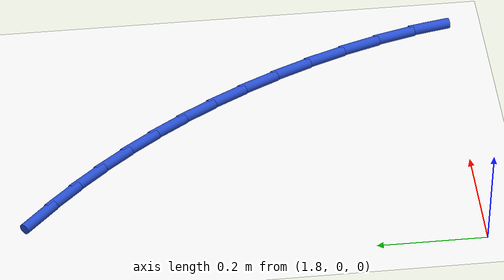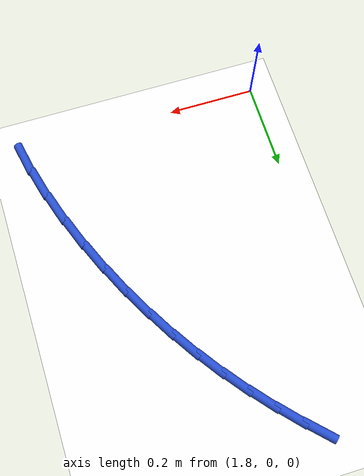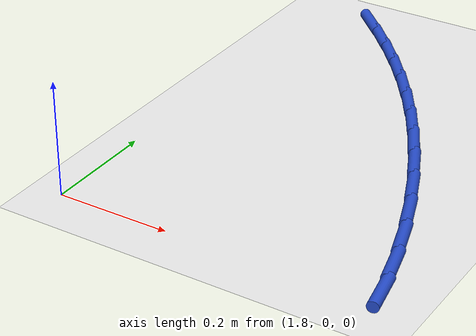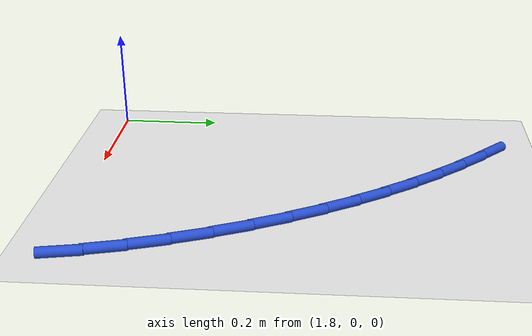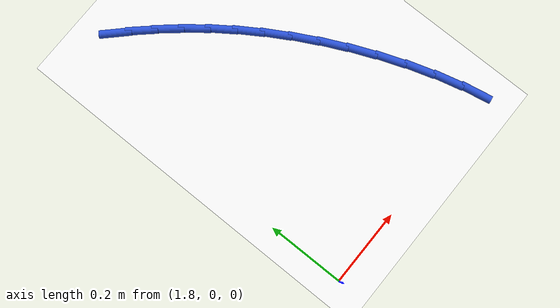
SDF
<sdf version="1.6">
 <world name="default">
  <model name="ground_plane">
   <static>1</static>
   <link name="link">
    <collision name="collision">
     <geometry><plane><normal>0 0 1</normal><size>100 100</size></plane></geometry>
     <surface><friction><ode><mu>100</mu><mu2>50</mu2></ode></friction></surface>
    </collision>
    <visual name="visual">
     <cast_shadows>0</cast_shadows>
     <geometry><plane><normal>0 0 1</normal><size>100 100</size></plane></geometry>
     <material>
      <script><uri>file://media/materials/scripts/gazebo.material</uri><name>Gazebo/WhiteGlow</name></script>
     </material>
    </visual>
   </link>
  </model>
  <model name="line">
   <link name="link_40">
    <pose>1.9265103583987908 0.7941224104426348 0.01 0 1.57 -0.7918920275397612</pose>
    <collision name="collision">
     <geometry><cylinder><radius>0.01</radius><length>0.08</length></cylinder></geometry>
    </collision>
    <visual name="visual">
     <material>
      <script><name>Gazebo/Blue</name><uri>file://media/materials/scripts/gazebo.material</uri></script>
     </material>
     <geometry><cylinder><radius>0.01</radius><length>0.08</length></cylinder></geometry>
    </visual>
   </link>
   <link name="link_41">
    <pose>1.97150481520614 0.7485397498723723 0.01 0 1.57 -0.8329507535495962</pose>
    <collision name="collision">
     <geometry><cylinder><radius>0.01</radius><length>0.08</length></cylinder></geometry>
    </collision>
    <visual name="visual">
     <material>
      <script><name>Gazebo/Blue</name><uri>file://media/materials/scripts/gazebo.material</uri></script>
     </material>
     <geometry><cylinder><radius>0.01</radius><length>0.08</length></cylinder></geometry>
    </visual>
   </link>
   <link name="link_42">
    <pose>2.0146685110409397 0.7010625950573198 0.01 0 1.57 -0.8755335274671758</pose>
    <collision name="collision">
     <geometry><cylinder><radius>0.01</radius><length>0.08</length></cylinder></geometry>
    </collision>
    <visual name="visual">
     <material>
      <script><name>Gazebo/Blue</name><uri>file://media/materials/scripts/gazebo.material</uri></script>
     </material>
     <geometry><cylinder><radius>0.01</radius><length>0.08</length></cylinder></geometry>
    </visual>
   </link>
   <link name="link_43">
    <pose>2.056013806925678 0.6515011219314082 0.01 0 1.57 -0.9191650148049102</pose>
    <collision name="collision">
     <geometry><cylinder><radius>0.01</radius><length>0.08</length></cylinder></geometry>
    </collision>
    <visual name="visual">
     <material>
      <script><name>Gazebo/Blue</name><uri>file://media/materials/scripts/gazebo.material</uri></script>
     </material>
     <geometry><cylinder><radius>0.01</radius><length>0.08</length></cylinder></geometry>
    </visual>
   </link>
   <link name="link_44">
    <pose>2.0955530638828446 0.5996655064285686 0.01 0 1.57 -0.963342444923784</pose>
    <collision name="collision">
     <geometry><cylinder><radius>0.01</radius><length>0.08</length></cylinder></geometry>
    </collision>
    <visual name="visual">
     <material>
      <script><name>Gazebo/Blue</name><uri>file://media/materials/scripts/gazebo.material</uri></script>
     </material>
     <geometry><cylinder><radius>0.01</radius><length>0.08</length></cylinder></geometry>
    </visual>
   </link>
   <link name="link_45">
    <pose>2.1332986429349265 0.5453659244827318 0.01 0 1.57 -1.0075590039333302</pose>
    <collision name="collision">
     <geometry><cylinder><radius>0.01</radius><length>0.08</length></cylinder></geometry>
    </collision>
    <visual name="visual">
     <material>
      <script><name>Gazebo/Blue</name><uri>file://media/materials/scripts/gazebo.material</uri></script>
     </material>
     <geometry><cylinder><radius>0.01</radius><length>0.08</length></cylinder></geometry>
    </visual>
   </link>
   <link name="link_46">
    <pose>2.1692629051044134 0.48841255202782874 0.01 0 1.57 -1.0513275461771687</pose>
    <collision name="collision">
     <geometry><cylinder><radius>0.01</radius><length>0.08</length></cylinder></geometry>
    </collision>
    <visual name="visual">
     <material>
      <script><name>Gazebo/Blue</name><uri>file://media/materials/scripts/gazebo.material</uri></script>
     </material>
     <geometry><cylinder><radius>0.01</radius><length>0.08</length></cylinder></geometry>
    </visual>
   </link>
   <link name="link_47">
    <pose>2.2034582114137944 0.42861556499779035 0.01 0 1.57 -1.094216112256632</pose>
    <collision name="collision">
     <geometry><cylinder><radius>0.01</radius><length>0.08</length></cylinder></geometry>
    </collision>
    <visual name="visual">
     <material>
      <script><name>Gazebo/Blue</name><uri>file://media/materials/scripts/gazebo.material</uri></script>
     </material>
     <geometry><cylinder><radius>0.01</radius><length>0.08</length></cylinder></geometry>
    </visual>
   </link>
   <link name="link_48">
    <pose>2.23588878552836 0.3657987136817686 0.01 0 1.57 -1.1365066918866262</pose>
    <collision name="collision">
     <geometry><cylinder><radius>0.01</radius><length>0.08</length></cylinder></geometry>
    </collision>
    <visual name="visual">
     <material>
      <script><name>Gazebo/Blue</name><uri>file://media/materials/scripts/gazebo.material</uri></script>
     </material>
     <geometry><cylinder><radius>0.01</radius><length>0.08</length></cylinder></geometry>
    </visual>
   </link>
   <link name="link_49">
    <pose>2.2663302667180747 0.3001670620688237 0.01 0 1.57 -1.1795714894038776</pose>
    <collision name="collision">
     <geometry><cylinder><radius>0.01</radius><length>0.08</length></cylinder></geometry>
    </collision>
    <visual name="visual">
     <material>
      <script><name>Gazebo/Blue</name><uri>file://media/materials/scripts/gazebo.material</uri></script>
     </material>
     <geometry><cylinder><radius>0.01</radius><length>0.08</length></cylinder></geometry>
    </visual>
   </link>
   <link name="link_50">
    <pose>2.2943040116097064 0.23234985645214887 0.01 0 1.57 -1.2246334006867845</pose>
    <collision name="collision">
     <geometry><cylinder><radius>0.01</radius><length>0.08</length></cylinder></geometry>
    </collision>
    <visual name="visual">
     <material>
      <script><name>Gazebo/Blue</name><uri>file://media/materials/scripts/gazebo.material</uri></script>
     </material>
     <geometry><cylinder><radius>0.01</radius><length>0.08</length></cylinder></geometry>
    </visual>
   </link>
   <link name="link_51">
    <pose>2.3193180815279404 0.16299852172037926 0.01 0 1.57 -1.2729220615132815</pose>
    <collision name="collision">
     <geometry><cylinder><radius>0.01</radius><length>0.08</length></cylinder></geometry>
    </collision>
    <visual name="visual">
     <material>
      <script><name>Gazebo/Blue</name><uri>file://media/materials/scripts/gazebo.material</uri></script>
     </material>
     <geometry><cylinder><radius>0.01</radius><length>0.08</length></cylinder></geometry>
    </visual>
   </link>
   <link name="link_52">
    <pose>2.3408805377974637 0.09276448276215041 0.01 0 1.57 -1.3257832791353643</pose>
    <collision name="collision">
     <geometry><cylinder><radius>0.01</radius><length>0.08</length></cylinder></geometry>
    </collision>
    <visual name="visual">
     <material>
      <script><name>Gazebo/Blue</name><uri>file://media/materials/scripts/gazebo.material</uri></script>
     </material>
     <geometry><cylinder><radius>0.01</radius><length>0.08</length></cylinder></geometry>
    </visual>
   </link>
   <link name="link_53">
    <pose>2.3584994417429614 0.02229916446609767 0.01 0 1.57 -1.3847596692497264</pose>
    <collision name="collision">
     <geometry><cylinder><radius>0.01</radius><length>0.08</length></cylinder></geometry>
    </collision>
    <visual name="visual">
     <material>
      <script><name>Gazebo/Blue</name><uri>file://media/materials/scripts/gazebo.material</uri></script>
     </material>
     <geometry><cylinder><radius>0.01</radius><length>0.08</length></cylinder></geometry>
    </visual>
   </link>
  </model>
 </world>
</sdf>
